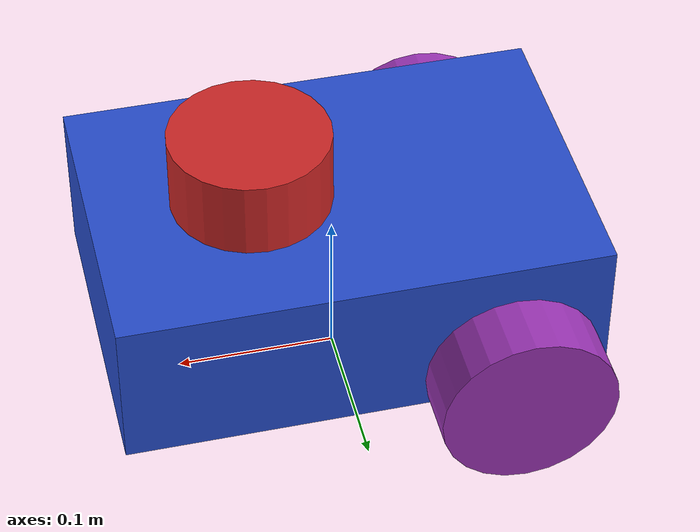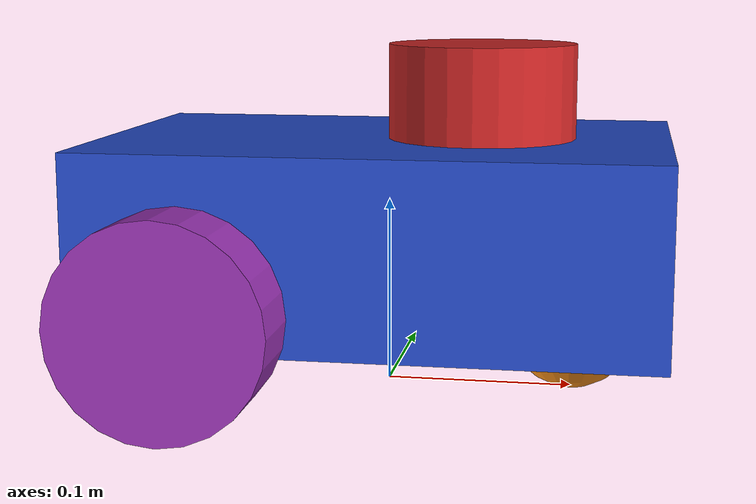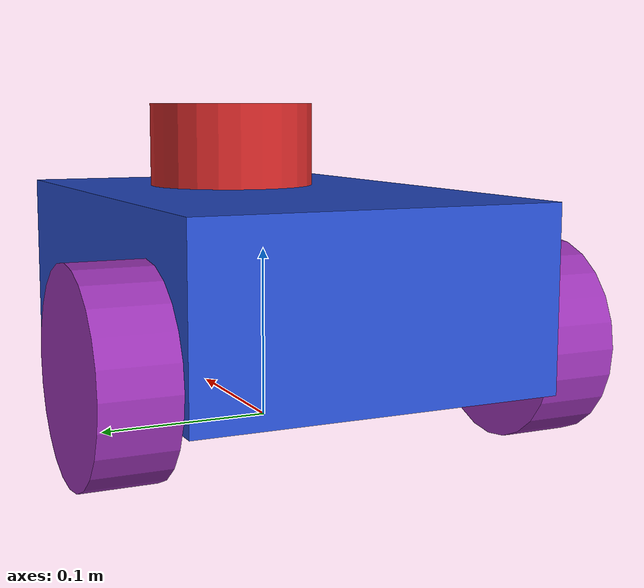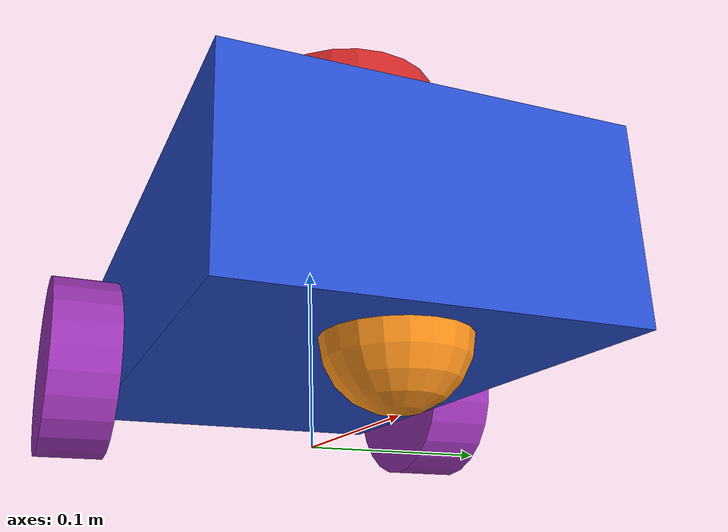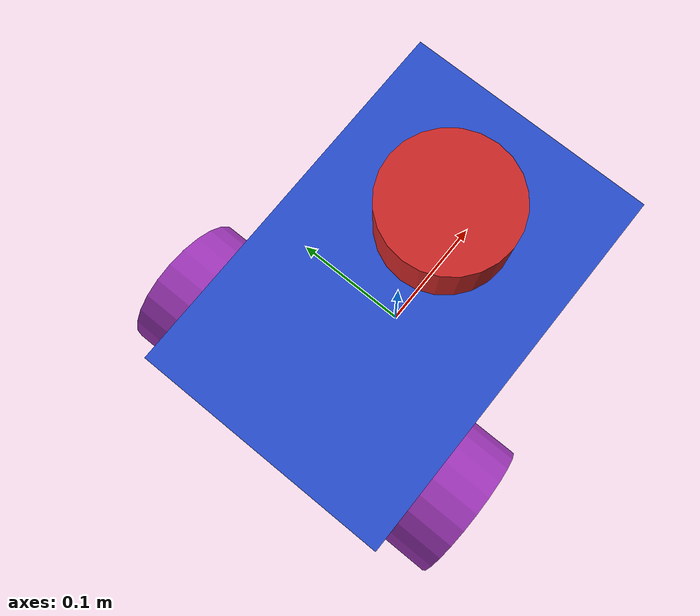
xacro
<?xml version="1.0"?>
<robot xmlns:xacro="http://www.ros.org/wiki/xacro">

    <link name="base_link">
    </link>

    <joint name="base_link_joint" type="fixed">
        <parent link="base_link" />
        <child link="chassis" />
        <origin xyz="-0.15 0 0.035" rpy="0 0 0" />
    </joint>

    <link name="chassis">
        <visual>
            <origin xyz="0.15 0 0.05" rpy="0 0 0" />
            <geometry>
                <box size="0.3 0.2 0.1" />
            </geometry>
            <material name="blue" />
        </visual>
        <collision>
            <origin xyz="0.15 0 0.05" rpy="0 0 0" />
            <geometry>
                <box size="0.3 0.2 0.1" />
            </geometry>
        </collision>
        <xacro:box_inertia m="5" x="0.3" y="0.2" z="0.1" o_xyz="0.15 0 0.05" o_rpy="0 0 0" />
    </link>

    <joint name="left_wheel_joint" type="continuous">
        <parent link="chassis" />
        <child link="left_wheel" />
        <origin xyz="0.06 0.12 0.02" rpy="-${pi/2} 0 0" />
        <axis xyz="0 0 1" />
    </joint>

    <link name="left_wheel">
        <visual>
            <origin xyz="0 0 0" rpy="0 0 0" />
            <geometry>
                <cylinder length="0.04" radius="0.055" />
            </geometry>
            <material name="purple" />
        </visual>
        <collision>
            <origin xyz="0 0 0" rpy="0 0 0" />
            <geometry>
                <cylinder length="0.04" radius="0.055" />
            </geometry>
        </collision>
        <xacro:cylinder_inertia m="0.1" r="0.055" l="0.04" o_xyz="0 0 0" o_rpy="0 0 0" />
    </link>

    <joint name="right_wheel_joint" type="continuous">
        <parent link="chassis" />
        <child link="right_wheel" />
        <origin xyz="0.06 -0.12 0.02" rpy="${pi/2} 0 0" />
        <axis xyz="0 0 1" />
    </joint>

    <link name="right_wheel">
        <visual>
            <origin xyz="0 0 0" rpy="0 0 0" />
            <geometry>
                <cylinder length="0.04" radius="0.055" />
            </geometry>
            <material name="purple" />
        </visual>
        <collision>
            <origin xyz="0 0 0" rpy="0 0 0" />
            <geometry>
                <cylinder length="0.04" radius="0.055" />
            </geometry>
        </collision>
        <xacro:cylinder_inertia m="0.1" r="0.055" l="0.04" o_xyz="0 0 0" o_rpy="0 0 0" />
    </link>

    <joint name="caster_wheel_joint" type="fixed">
        <parent link="chassis" />
        <child link="caster_wheel" />
        <origin xyz="0.25 0 0" rpy="0 0 0" />
    </joint>

    <link name="caster_wheel">
        <visual>
            <origin xyz="0 0 0" rpy="0 0 0" />
            <geometry>
                <sphere radius="0.035" />
            </geometry>
            <material name="orange" />
        </visual>
        <collision>
            <origin xyz="0 0 0" rpy="0 0 0" />
            <geometry>
                <sphere radius="0.035" />
            </geometry>
        </collision>
        <xacro:sphere_inertia m="0.1" r="0.035" o_xyz="0 0 0" o_rpy="0 0 0" />
    </link>

    <joint name="laser_joint" type="fixed">
        <parent link="chassis" />
        <child link="laser_frame" />
        <origin xyz="0.2 0 0.1" rpy="0 0 0" />
    </joint>

    <link name="laser_frame">
        <visual>
            <origin xyz="0 0 0.025" rpy="0 0 0" />
            <geometry>
                <cylinder length="0.05" radius="0.05" />
            </geometry>
            <material name="red" />
        </visual>
        <collision>
            <origin xyz="0 0 0" rpy="0 0 0" />
            <geometry>
                <cylinder length="0.05" radius="0.05" />
            </geometry>
        </collision>
        <xacro:cylinder_inertia m="0.1" r="0.05" l="0.05" o_xyz="0 0 0" o_rpy="0 0 0" />
    </link>

    <gazebo reference="laser_frame">
        <sensor name="laser" type="lidar">
            <pose>0 0 0 0 0 0</pose>
            <update_rate>10</update_rate>
            <visualize>true</visualize>
            <always_on>true</always_on>
            <!-- Tell gz-sim where to publish -->
            <topic>/model/wally_boxxy/scan</topic>
            <ray>
                <scan>
                    <horizontal>
                    <samples>360</samples>
                    <resolution>1</resolution>
                    <min_angle>-3.14159</min_angle>
                    <max_angle>3.14159</max_angle>
                    </horizontal>
                </scan>
                <range>
                    <min>0.3</min>
                    <max>12</max>
                    <resolution>0.01</resolution>
                </range>
                <noise>
                    <type>gaussian</type>
                    <mean>0.0</mean>
                    <stddev>0.01</stddev>
                </noise>
            </ray>
        </sensor>
    </gazebo>

</robot>
